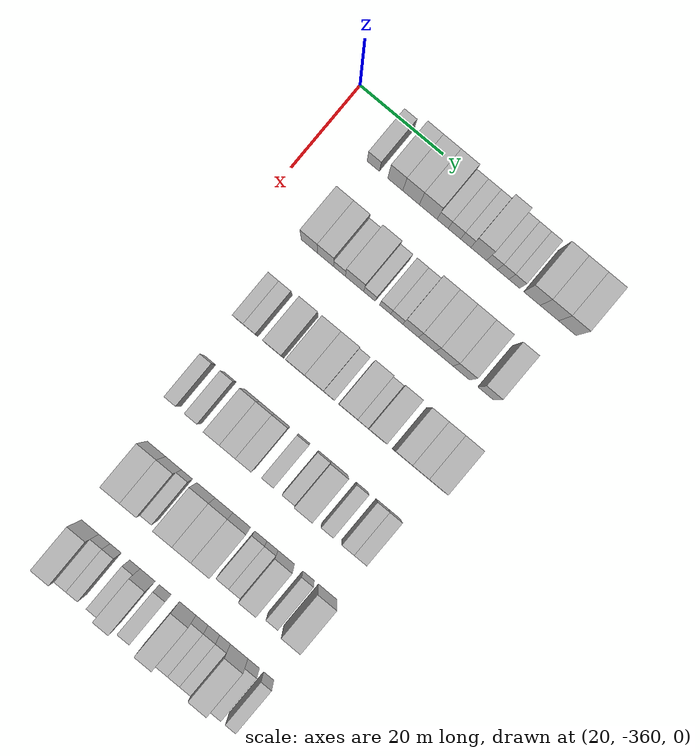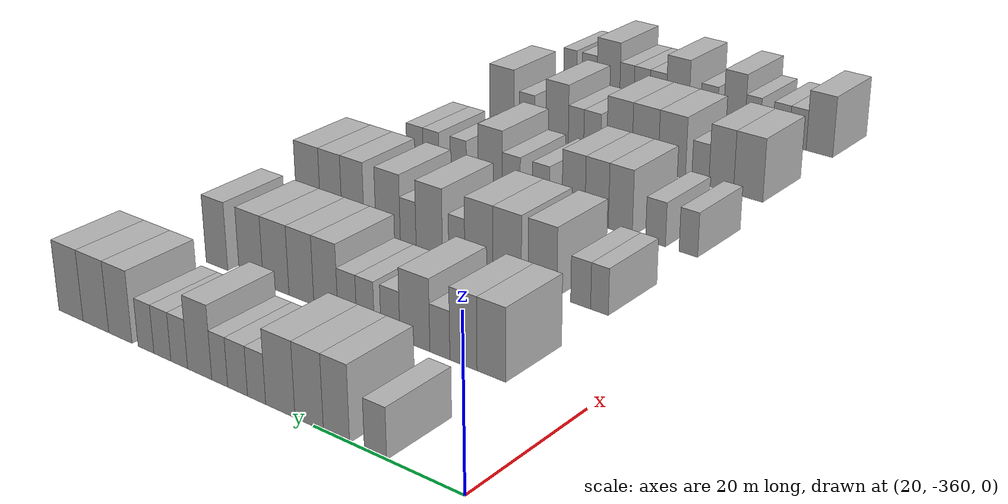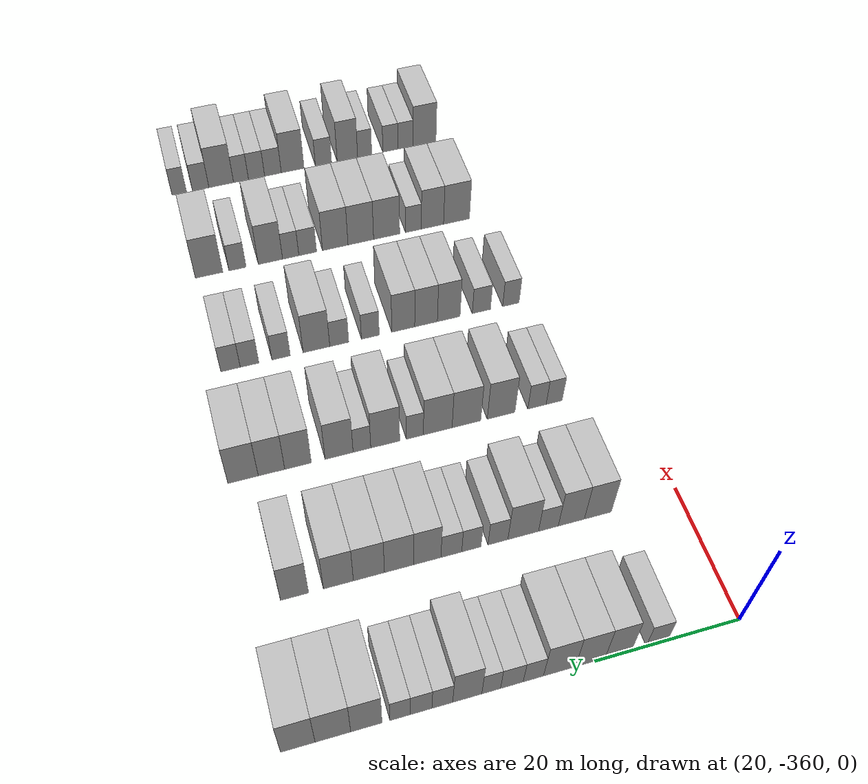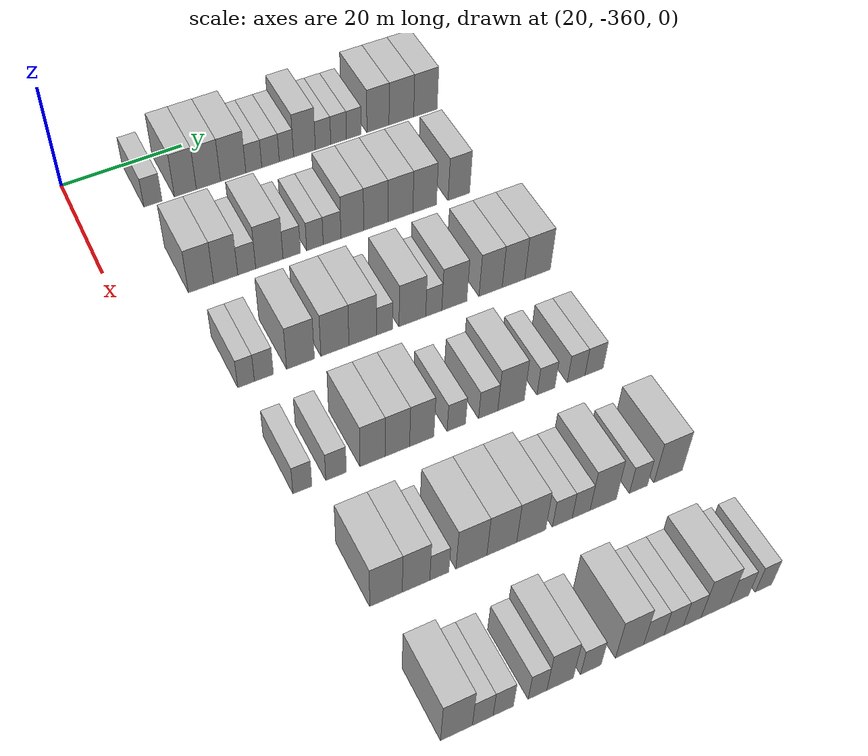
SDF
<sdf version="1.6">
 <world name="default">
  <model name="building_1">
   <static>1</static>
   <pose>25.0000 -348.5133 0 0.000000 0.000000 0.000000</pose>
   <link name="link">
    <pose>0 0 3.00 0 0 0</pose>
    <collision name="collision"><geometry><box><size>10.0000 2.9734 6.0000</size></box></geometry></collision>
    <visual name="visual">
     <cast_shadows>0</cast_shadows>
     <geometry><box><size>10.0000 2.9734 6.0000</size></box></geometry>
     <material>
      <script>
       <uri>model://HANNAS_wall/materials/scripts</uri>
       <uri>model://HANNAS_wall/materials/textures</uri>
       <name>vrc/HANNAS_wall</name>
      </script>
     </material>
    </visual>
   </link>
  </model>
  <model name="building_2">
   <static>1</static>
   <pose>25.0000 -343.2179 0 0.000000 0.000000 0.000000</pose>
   <link name="link">
    <pose>0 0 4.50 0 0 0</pose>
    <collision name="collision"><geometry><box><size>10.0000 3.6172 9.0000</size></box></geometry></collision>
    <visual name="visual">
     <cast_shadows>0</cast_shadows>
     <geometry><box><size>10.0000 3.6172 9.0000</size></box></geometry>
     <material>
      <script>
       <uri>model://HANNAS_wall/materials/scripts</uri>
       <uri>model://HANNAS_wall/materials/textures</uri>
       <name>vrc/HANNAS_wall</name>
      </script>
     </material>
    </visual>
   </link>
  </model>
  <model name="building_3">
   <static>1</static>
   <pose>25.0000 -339.4015 0 0.000000 0.000000 0.000000</pose>
   <link name="link">
    <pose>0 0 4.50 0 0 0</pose>
    <collision name="collision"><geometry><box><size>10.0000 4.0156 9.0000</size></box></geometry></collision>
    <visual name="visual">
     <cast_shadows>0</cast_shadows>
     <geometry><box><size>10.0000 4.0156 9.0000</size></box></geometry>
     <material>
      <script>
       <uri>model://HANNAS_wall/materials/scripts</uri>
       <uri>model://HANNAS_wall/materials/textures</uri>
       <name>vrc/HANNAS_wall</name>
      </script>
     </material>
    </visual>
   </link>
  </model>
  <model name="building_4">
   <static>1</static>
   <pose>25.0000 -335.2594 0 0.000000 0.000000 0.000000</pose>
   <link name="link">
    <pose>0 0 4.50 0 0 0</pose>
    <collision name="collision"><geometry><box><size>10.0000 4.2686 9.0000</size></box></geometry></collision>
    <visual name="visual">
     <cast_shadows>0</cast_shadows>
     <geometry><box><size>10.0000 4.2686 9.0000</size></box></geometry>
     <material>
      <script>
       <uri>model://HANNAS_wall/materials/scripts</uri>
       <uri>model://HANNAS_wall/materials/textures</uri>
       <name>vrc/HANNAS_wall</name>
      </script>
     </material>
    </visual>
   </link>
  </model>
  <model name="building_5">
   <static>1</static>
   <pose>25.0000 -331.7794 0 0.000000 0.000000 0.000000</pose>
   <link name="link">
    <pose>0 0 3.00 0 0 0</pose>
    <collision name="collision"><geometry><box><size>10.0000 2.6914 6.0000</size></box></geometry></collision>
    <visual name="visual">
     <cast_shadows>0</cast_shadows>
     <geometry><box><size>10.0000 2.6914 6.0000</size></box></geometry>
     <material>
      <script>
       <uri>model://HANNAS_wall/materials/scripts</uri>
       <uri>model://HANNAS_wall/materials/textures</uri>
       <name>vrc/HANNAS_wall</name>
      </script>
     </material>
    </visual>
   </link>
  </model>
  <model name="building_6">
   <static>1</static>
   <pose>25.0000 -328.9396 0 0.000000 0.000000 0.000000</pose>
   <link name="link">
    <pose>0 0 3.00 0 0 0</pose>
    <collision name="collision"><geometry><box><size>10.0000 2.9883 6.0000</size></box></geometry></collision>
    <visual name="visual">
     <cast_shadows>0</cast_shadows>
     <geometry><box><size>10.0000 2.9883 6.0000</size></box></geometry>
     <material>
      <script>
       <uri>model://HANNAS_wall/materials/scripts</uri>
       <uri>model://HANNAS_wall/materials/textures</uri>
       <name>vrc/HANNAS_wall</name>
      </script>
     </material>
    </visual>
   </link>
  </model>
  <model name="building_7">
   <static>1</static>
   <pose>25.0000 -326.2206 0 0.000000 0.000000 0.000000</pose>
   <link name="link">
    <pose>0 0 3.00 0 0 0</pose>
    <collision name="collision"><geometry><box><size>10.0000 2.4496 6.0000</size></box></geometry></collision>
    <visual name="visual">
     <cast_shadows>0</cast_shadows>
     <geometry><box><size>10.0000 2.4496 6.0000</size></box></geometry>
     <material>
      <script>
       <uri>model://HANNAS_wall/materials/scripts</uri>
       <uri>model://HANNAS_wall/materials/textures</uri>
       <name>vrc/HANNAS_wall</name>
      </script>
     </material>
    </visual>
   </link>
  </model>
  <model name="building_8">
   <static>1</static>
   <pose>25.0000 -323.1058 0 0.000000 0.000000 0.000000</pose>
   <link name="link">
    <pose>0 0 4.50 0 0 0</pose>
    <collision name="collision"><geometry><box><size>10.0000 3.7800 9.0000</size></box></geometry></collision>
    <visual name="visual">
     <cast_shadows>0</cast_shadows>
     <geometry><box><size>10.0000 3.7800 9.0000</size></box></geometry>
     <material>
      <script>
       <uri>model://HANNAS_wall/materials/scripts</uri>
       <uri>model://HANNAS_wall/materials/textures</uri>
       <name>vrc/HANNAS_wall</name>
      </script>
     </material>
    </visual>
   </link>
  </model>
  <model name="building_9">
   <static>1</static>
   <pose>25.0000 -319.8751 0 0.000000 0.000000 0.000000</pose>
   <link name="link">
    <pose>0 0 3.00 0 0 0</pose>
    <collision name="collision"><geometry><box><size>10.0000 2.6815 6.0000</size></box></geometry></collision>
    <visual name="visual">
     <cast_shadows>0</cast_shadows>
     <geometry><box><size>10.0000 2.6815 6.0000</size></box></geometry>
     <material>
      <script>
       <uri>model://HANNAS_wall/materials/scripts</uri>
       <uri>model://HANNAS_wall/materials/textures</uri>
       <name>vrc/HANNAS_wall</name>
      </script>
     </material>
    </visual>
   </link>
  </model>
  <model name="building_10">
   <static>1</static>
   <pose>25.0000 -317.1587 0 0.000000 0.000000 0.000000</pose>
   <link name="link">
    <pose>0 0 3.00 0 0 0</pose>
    <collision name="collision"><geometry><box><size>10.0000 2.7513 6.0000</size></box></geometry></collision>
    <visual name="visual">
     <cast_shadows>0</cast_shadows>
     <geometry><box><size>10.0000 2.7513 6.0000</size></box></geometry>
     <material>
      <script>
       <uri>model://HANNAS_wall/materials/scripts</uri>
       <uri>model://HANNAS_wall/materials/textures</uri>
       <name>vrc/HANNAS_wall</name>
      </script>
     </material>
    </visual>
   </link>
  </model>
  <model name="building_11">
   <static>1</static>
   <pose>25.0000 -314.4762 0 0.000000 0.000000 0.000000</pose>
   <link name="link">
    <pose>0 0 3.00 0 0 0</pose>
    <collision name="collision"><geometry><box><size>10.0000 2.6137 6.0000</size></box></geometry></collision>
    <visual name="visual">
     <cast_shadows>0</cast_shadows>
     <geometry><box><size>10.0000 2.6137 6.0000</size></box></geometry>
     <material>
      <script>
       <uri>model://HANNAS_wall/materials/scripts</uri>
       <uri>model://HANNAS_wall/materials/textures</uri>
       <name>vrc/HANNAS_wall</name>
      </script>
     </material>
    </visual>
   </link>
  </model>
  <model name="building_12">
   <static>1</static>
   <pose>25.0000 -310.1985 0 0.000000 0.000000 0.000000</pose>
   <link name="link">
    <pose>0 0 4.50 0 0 0</pose>
    <collision name="collision"><geometry><box><size>10.0000 3.9417 9.0000</size></box></geometry></collision>
    <visual name="visual">
     <cast_shadows>0</cast_shadows>
     <geometry><box><size>10.0000 3.9417 9.0000</size></box></geometry>
     <material>
      <script>
       <uri>model://HANNAS_wall/materials/scripts</uri>
       <uri>model://HANNAS_wall/materials/textures</uri>
       <name>vrc/HANNAS_wall</name>
      </script>
     </material>
    </visual>
   </link>
  </model>
  <model name="building_13">
   <static>1</static>
   <pose>25.0000 -306.0023 0 0.000000 0.000000 0.000000</pose>
   <link name="link">
    <pose>0 0 4.50 0 0 0</pose>
    <collision name="collision"><geometry><box><size>10.0000 4.4508 9.0000</size></box></geometry></collision>
    <visual name="visual">
     <cast_shadows>0</cast_shadows>
     <geometry><box><size>10.0000 4.4508 9.0000</size></box></geometry>
     <material>
      <script>
       <uri>model://HANNAS_wall/materials/scripts</uri>
       <uri>model://HANNAS_wall/materials/textures</uri>
       <name>vrc/HANNAS_wall</name>
      </script>
     </material>
    </visual>
   </link>
  </model>
  <model name="building_14">
   <static>1</static>
   <pose>25.0000 -301.6428 0 0.000000 0.000000 0.000000</pose>
   <link name="link">
    <pose>0 0 4.50 0 0 0</pose>
    <collision name="collision"><geometry><box><size>10.0000 4.2681 9.0000</size></box></geometry></collision>
    <visual name="visual">
     <cast_shadows>0</cast_shadows>
     <geometry><box><size>10.0000 4.2681 9.0000</size></box></geometry>
     <material>
      <script>
       <uri>model://HANNAS_wall/materials/scripts</uri>
       <uri>model://HANNAS_wall/materials/textures</uri>
       <name>vrc/HANNAS_wall</name>
      </script>
     </material>
    </visual>
   </link>
  </model>
  <model name="building_184">
   <static>1</static>
   <pose>44.0000 -348.0257 0 0.000000 0.000000 0.000000</pose>
   <link name="link">
    <pose>0 0 4.50 0 0 0</pose>
    <collision name="collision"><geometry><box><size>10.0000 3.9487 9.0000</size></box></geometry></collision>
    <visual name="visual">
     <cast_shadows>0</cast_shadows>
     <geometry><box><size>10.0000 3.9487 9.0000</size></box></geometry>
     <material>
      <script>
       <uri>model://HANNAS_wall/materials/scripts</uri>
       <uri>model://HANNAS_wall/materials/textures</uri>
       <name>vrc/HANNAS_wall</name>
      </script>
     </material>
    </visual>
   </link>
  </model>
  <model name="building_185">
   <static>1</static>
   <pose>44.0000 -344.1506 0 0.000000 0.000000 0.000000</pose>
   <link name="link">
    <pose>0 0 4.50 0 0 0</pose>
    <collision name="collision"><geometry><box><size>10.0000 3.8015 9.0000</size></box></geometry></collision>
    <visual name="visual">
     <cast_shadows>0</cast_shadows>
     <geometry><box><size>10.0000 3.8015 9.0000</size></box></geometry>
     <material>
      <script>
       <uri>model://HANNAS_wall/materials/scripts</uri>
       <uri>model://HANNAS_wall/materials/textures</uri>
       <name>vrc/HANNAS_wall</name>
      </script>
     </material>
    </visual>
   </link>
  </model>
  <model name="building_186">
   <static>1</static>
   <pose>44.0000 -340.8185 0 0.000000 0.000000 0.000000</pose>
   <link name="link">
    <pose>0 0 3.00 0 0 0</pose>
    <collision name="collision"><geometry><box><size>10.0000 2.8627 6.0000</size></box></geometry></collision>
    <visual name="visual">
     <cast_shadows>0</cast_shadows>
     <geometry><box><size>10.0000 2.8627 6.0000</size></box></geometry>
     <material>
      <script>
       <uri>model://HANNAS_wall/materials/scripts</uri>
       <uri>model://HANNAS_wall/materials/textures</uri>
       <name>vrc/HANNAS_wall</name>
      </script>
     </material>
    </visual>
   </link>
  </model>
  <model name="building_187">
   <static>1</static>
   <pose>44.0000 -337.1940 0 0.000000 0.000000 0.000000</pose>
   <link name="link">
    <pose>0 0 4.50 0 0 0</pose>
    <collision name="collision"><geometry><box><size>10.0000 4.3863 9.0000</size></box></geometry></collision>
    <visual name="visual">
     <cast_shadows>0</cast_shadows>
     <geometry><box><size>10.0000 4.3863 9.0000</size></box></geometry>
     <material>
      <script>
       <uri>model://HANNAS_wall/materials/scripts</uri>
       <uri>model://HANNAS_wall/materials/textures</uri>
       <name>vrc/HANNAS_wall</name>
      </script>
     </material>
    </visual>
   </link>
  </model>
  <model name="building_188">
   <static>1</static>
   <pose>44.0000 -333.5856 0 0.000000 0.000000 0.000000</pose>
   <link name="link">
    <pose>0 0 3.00 0 0 0</pose>
    <collision name="collision"><geometry><box><size>10.0000 2.8305 6.0000</size></box></geometry></collision>
    <visual name="visual">
     <cast_shadows>0</cast_shadows>
     <geometry><box><size>10.0000 2.8305 6.0000</size></box></geometry>
     <material>
      <script>
       <uri>model://HANNAS_wall/materials/scripts</uri>
       <uri>model://HANNAS_wall/materials/textures</uri>
       <name>vrc/HANNAS_wall</name>
      </script>
     </material>
    </visual>
   </link>
  </model>
  <model name="building_189">
   <static>1</static>
   <pose>44.0000 -329.8129 0 0.000000 0.000000 0.000000</pose>
   <link name="link">
    <pose>0 0 3.00 0 0 0</pose>
    <collision name="collision"><geometry><box><size>10.0000 2.7150 6.0000</size></box></geometry></collision>
    <visual name="visual">
     <cast_shadows>0</cast_shadows>
     <geometry><box><size>10.0000 2.7150 6.0000</size></box></geometry>
     <material>
      <script>
       <uri>model://HANNAS_wall/materials/scripts</uri>
       <uri>model://HANNAS_wall/materials/textures</uri>
       <name>vrc/HANNAS_wall</name>
      </script>
     </material>
    </visual>
   </link>
  </model>
  <model name="building_190">
   <static>1</static>
   <pose>44.0000 -326.9961 0 0.000000 0.000000 0.000000</pose>
   <link name="link">
    <pose>0 0 3.00 0 0 0</pose>
    <collision name="collision"><geometry><box><size>10.0000 2.9185 6.0000</size></box></geometry></collision>
    <visual name="visual">
     <cast_shadows>0</cast_shadows>
     <geometry><box><size>10.0000 2.9185 6.0000</size></box></geometry>
     <material>
      <script>
       <uri>model://HANNAS_wall/materials/scripts</uri>
       <uri>model://HANNAS_wall/materials/textures</uri>
       <name>vrc/HANNAS_wall</name>
      </script>
     </material>
    </visual>
   </link>
  </model>
  <model name="building_191">
   <static>1</static>
   <pose>44.0000 -323.6446 0 0.000000 0.000000 0.000000</pose>
   <link name="link">
    <pose>0 0 4.50 0 0 0</pose>
    <collision name="collision"><geometry><box><size>10.0000 3.7847 9.0000</size></box></geometry></collision>
    <visual name="visual">
     <cast_shadows>0</cast_shadows>
     <geometry><box><size>10.0000 3.7847 9.0000</size></box></geometry>
     <material>
      <script>
       <uri>model://HANNAS_wall/materials/scripts</uri>
       <uri>model://HANNAS_wall/materials/textures</uri>
       <name>vrc/HANNAS_wall</name>
      </script>
     </material>
    </visual>
   </link>
  </model>
  <model name="building_192">
   <static>1</static>
   <pose>44.0000 -319.7346 0 0.000000 0.000000 0.000000</pose>
   <link name="link">
    <pose>0 0 4.50 0 0 0</pose>
    <collision name="collision"><geometry><box><size>10.0000 4.0351 9.0000</size></box></geometry></collision>
    <visual name="visual">
     <cast_shadows>0</cast_shadows>
     <geometry><box><size>10.0000 4.0351 9.0000</size></box></geometry>
     <material>
      <script>
       <uri>model://HANNAS_wall/materials/scripts</uri>
       <uri>model://HANNAS_wall/materials/textures</uri>
       <name>vrc/HANNAS_wall</name>
      </script>
     </material>
    </visual>
   </link>
  </model>
  <model name="building_193">
   <static>1</static>
   <pose>44.0000 -315.5925 0 0.000000 0.000000 0.000000</pose>
   <link name="link">
    <pose>0 0 4.50 0 0 0</pose>
    <collision name="collision"><geometry><box><size>10.0000 4.2491 9.0000</size></box></geometry></collision>
    <visual name="visual">
     <cast_shadows>0</cast_shadows>
     <geometry><box><size>10.0000 4.2491 9.0000</size></box></geometry>
     <material>
      <script>
       <uri>model://HANNAS_wall/materials/scripts</uri>
       <uri>model://HANNAS_wall/materials/textures</uri>
       <name>vrc/HANNAS_wall</name>
      </script>
     </material>
    </visual>
   </link>
  </model>
  <model name="building_194">
   <static>1</static>
   <pose>44.0000 -311.4368 0 0.000000 0.000000 0.000000</pose>
   <link name="link">
    <pose>0 0 4.50 0 0 0</pose>
    <collision name="collision"><geometry><box><size>10.0000 4.0625 9.0000</size></box></geometry></collision>
    <visual name="visual">
     <cast_shadows>0</cast_shadows>
     <geometry><box><size>10.0000 4.0625 9.0000</size></box></geometry>
     <material>
      <script>
       <uri>model://HANNAS_wall/materials/scripts</uri>
       <uri>model://HANNAS_wall/materials/textures</uri>
       <name>vrc/HANNAS_wall</name>
      </script>
     </material>
    </visual>
   </link>
  </model>
  <model name="building_195">
   <static>1</static>
   <pose>44.0000 -305.5252 0 0.000000 0.000000 0.000000</pose>
   <link name="link">
    <pose>0 0 4.50 0 0 0</pose>
    <collision name="collision"><geometry><box><size>10.0000 3.7606 9.0000</size></box></geometry></collision>
    <visual name="visual">
     <cast_shadows>0</cast_shadows>
     <geometry><box><size>10.0000 3.7606 9.0000</size></box></geometry>
     <material>
      <script>
       <uri>model://HANNAS_wall/materials/scripts</uri>
       <uri>model://HANNAS_wall/materials/textures</uri>
       <name>vrc/HANNAS_wall</name>
      </script>
     </material>
    </visual>
   </link>
  </model>
  <model name="building_345">
   <static>1</static>
   <pose>63.0000 -348.7533 0 0.000000 0.000000 0.000000</pose>
   <link name="link">
    <pose>0 0 3.00 0 0 0</pose>
    <collision name="collision"><geometry><box><size>10.0000 2.4933 6.0000</size></box></geometry></collision>
    <visual name="visual">
     <cast_shadows>0</cast_shadows>
     <geometry><box><size>10.0000 2.4933 6.0000</size></box></geometry>
     <material>
      <script>
       <uri>model://HANNAS_wall/materials/scripts</uri>
       <uri>model://HANNAS_wall/materials/textures</uri>
       <name>vrc/HANNAS_wall</name>
      </script>
     </material>
    </visual>
   </link>
  </model>
  <model name="building_346">
   <static>1</static>
   <pose>63.0000 -346.0830 0 0.000000 0.000000 0.000000</pose>
   <link name="link">
    <pose>0 0 3.00 0 0 0</pose>
    <collision name="collision"><geometry><box><size>10.0000 2.8473 6.0000</size></box></geometry></collision>
    <visual name="visual">
     <cast_shadows>0</cast_shadows>
     <geometry><box><size>10.0000 2.8473 6.0000</size></box></geometry>
     <material>
      <script>
       <uri>model://HANNAS_wall/materials/scripts</uri>
       <uri>model://HANNAS_wall/materials/textures</uri>
       <name>vrc/HANNAS_wall</name>
      </script>
     </material>
    </visual>
   </link>
  </model>
  <model name="building_347">
   <static>1</static>
   <pose>63.0000 -340.5374 0 0.000000 0.000000 0.000000</pose>
   <link name="link">
    <pose>0 0 4.50 0 0 0</pose>
    <collision name="collision"><geometry><box><size>10.0000 4.2439 9.0000</size></box></geometry></collision>
    <visual name="visual">
     <cast_shadows>0</cast_shadows>
     <geometry><box><size>10.0000 4.2439 9.0000</size></box></geometry>
     <material>
      <script>
       <uri>model://HANNAS_wall/materials/scripts</uri>
       <uri>model://HANNAS_wall/materials/textures</uri>
       <name>vrc/HANNAS_wall</name>
      </script>
     </material>
    </visual>
   </link>
  </model>
  <model name="building_348">
   <static>1</static>
   <pose>63.0000 -335.2444 0 0.000000 0.000000 0.000000</pose>
   <link name="link">
    <pose>0 0 4.50 0 0 0</pose>
    <collision name="collision"><geometry><box><size>10.0000 4.3421 9.0000</size></box></geometry></collision>
    <visual name="visual">
     <cast_shadows>0</cast_shadows>
     <geometry><box><size>10.0000 4.3421 9.0000</size></box></geometry>
     <material>
      <script>
       <uri>model://HANNAS_wall/materials/scripts</uri>
       <uri>model://HANNAS_wall/materials/textures</uri>
       <name>vrc/HANNAS_wall</name>
      </script>
     </material>
    </visual>
   </link>
  </model>
  <model name="building_349">
   <static>1</static>
   <pose>63.0000 -330.9097 0 0.000000 0.000000 0.000000</pose>
   <link name="link">
    <pose>0 0 4.50 0 0 0</pose>
    <collision name="collision"><geometry><box><size>10.0000 4.3273 9.0000</size></box></geometry></collision>
    <visual name="visual">
     <cast_shadows>0</cast_shadows>
     <geometry><box><size>10.0000 4.3273 9.0000</size></box></geometry>
     <material>
      <script>
       <uri>model://HANNAS_wall/materials/scripts</uri>
       <uri>model://HANNAS_wall/materials/textures</uri>
       <name>vrc/HANNAS_wall</name>
      </script>
     </material>
    </visual>
   </link>
  </model>
  <model name="building_350">
   <static>1</static>
   <pose>63.0000 -327.4767 0 0.000000 0.000000 0.000000</pose>
   <link name="link">
    <pose>0 0 3.00 0 0 0</pose>
    <collision name="collision"><geometry><box><size>10.0000 2.5388 6.0000</size></box></geometry></collision>
    <visual name="visual">
     <cast_shadows>0</cast_shadows>
     <geometry><box><size>10.0000 2.5388 6.0000</size></box></geometry>
     <material>
      <script>
       <uri>model://HANNAS_wall/materials/scripts</uri>
       <uri>model://HANNAS_wall/materials/textures</uri>
       <name>vrc/HANNAS_wall</name>
      </script>
     </material>
    </visual>
   </link>
  </model>
  <model name="building_351">
   <static>1</static>
   <pose>63.0000 -323.0699 0 0.000000 0.000000 0.000000</pose>
   <link name="link">
    <pose>0 0 4.50 0 0 0</pose>
    <collision name="collision"><geometry><box><size>10.0000 4.2748 9.0000</size></box></geometry></collision>
    <visual name="visual">
     <cast_shadows>0</cast_shadows>
     <geometry><box><size>10.0000 4.2748 9.0000</size></box></geometry>
     <material>
      <script>
       <uri>model://HANNAS_wall/materials/scripts</uri>
       <uri>model://HANNAS_wall/materials/textures</uri>
       <name>vrc/HANNAS_wall</name>
      </script>
     </material>
    </visual>
   </link>
  </model>
  <model name="building_352">
   <static>1</static>
   <pose>63.0000 -319.6327 0 0.000000 0.000000 0.000000</pose>
   <link name="link">
    <pose>0 0 3.00 0 0 0</pose>
    <collision name="collision"><geometry><box><size>10.0000 2.5997 6.0000</size></box></geometry></collision>
    <visual name="visual">
     <cast_shadows>0</cast_shadows>
     <geometry><box><size>10.0000 2.5997 6.0000</size></box></geometry>
     <material>
      <script>
       <uri>model://HANNAS_wall/materials/scripts</uri>
       <uri>model://HANNAS_wall/materials/textures</uri>
       <name>vrc/HANNAS_wall</name>
      </script>
     </material>
    </visual>
   </link>
  </model>
  <model name="building_353">
   <static>1</static>
   <pose>63.0000 -316.2859 0 0.000000 0.000000 0.000000</pose>
   <link name="link">
    <pose>0 0 4.50 0 0 0</pose>
    <collision name="collision"><geometry><box><size>10.0000 4.0939 9.0000</size></box></geometry></collision>
    <visual name="visual">
     <cast_shadows>0</cast_shadows>
     <geometry><box><size>10.0000 4.0939 9.0000</size></box></geometry>
     <material>
      <script>
       <uri>model://HANNAS_wall/materials/scripts</uri>
       <uri>model://HANNAS_wall/materials/textures</uri>
       <name>vrc/HANNAS_wall</name>
      </script>
     </material>
    </visual>
   </link>
  </model>
  <model name="building_354">
   <static>1</static>
   <pose>63.0000 -310.3203 0 0.000000 0.000000 0.000000</pose>
   <link name="link">
    <pose>0 0 4.50 0 0 0</pose>
    <collision name="collision"><geometry><box><size>10.0000 3.8371 9.0000</size></box></geometry></collision>
    <visual name="visual">
     <cast_shadows>0</cast_shadows>
     <geometry><box><size>10.0000 3.8371 9.0000</size></box></geometry>
     <material>
      <script>
       <uri>model://HANNAS_wall/materials/scripts</uri>
       <uri>model://HANNAS_wall/materials/textures</uri>
       <name>vrc/HANNAS_wall</name>
      </script>
     </material>
    </visual>
   </link>
  </model>
  <model name="building_355">
   <static>1</static>
   <pose>63.0000 -306.5069 0 0.000000 0.000000 0.000000</pose>
   <link name="link">
    <pose>0 0 4.50 0 0 0</pose>
    <collision name="collision"><geometry><box><size>10.0000 3.7898 9.0000</size></box></geometry></collision>
    <visual name="visual">
     <cast_shadows>0</cast_shadows>
     <geometry><box><size>10.0000 3.7898 9.0000</size></box></geometry>
     <material>
      <script>
       <uri>model://HANNAS_wall/materials/scripts</uri>
       <uri>model://HANNAS_wall/materials/textures</uri>
       <name>vrc/HANNAS_wall</name>
      </script>
     </material>
    </visual>
   </link>
  </model>
  <model name="building_356">
   <static>1</static>
   <pose>63.0000 -302.4527 0 0.000000 0.000000 0.000000</pose>
   <link name="link">
    <pose>0 0 4.50 0 0 0</pose>
    <collision name="collision"><geometry><box><size>10.0000 4.3184 9.0000</size></box></geometry></collision>
    <visual name="visual">
     <cast_shadows>0</cast_shadows>
     <geometry><box><size>10.0000 4.3184 9.0000</size></box></geometry>
     <material>
      <script>
       <uri>model://HANNAS_wall/materials/scripts</uri>
       <uri>model://HANNAS_wall/materials/textures</uri>
       <name>vrc/HANNAS_wall</name>
      </script>
     </material>
    </visual>
   </link>
  </model>
  <model name="building_512">
   <static>1</static>
   <pose>82.0000 -348.6466 0 0.000000 0.000000 0.000000</pose>
   <link name="link">
    <pose>0 0 3.00 0 0 0</pose>
    <collision name="collision"><geometry><box><size>10.0000 2.7068 6.0000</size></box></geometry></collision>
    <visual name="visual">
     <cast_shadows>0</cast_shadows>
     <geometry><box><size>10.0000 2.7068 6.0000</size></box></geometry>
     <material>
      <script>
       <uri>model://HANNAS_wall/materials/scripts</uri>
       <uri>model://HANNAS_wall/materials/textures</uri>
       <name>vrc/HANNAS_wall</name>
      </script>
     </material>
    </visual>
   </link>
  </model>
  <model name="building_513">
   <static>1</static>
   <pose>82.0000 -343.8101 0 0.000000 0.000000 0.000000</pose>
   <link name="link">
    <pose>0 0 3.00 0 0 0</pose>
    <collision name="collision"><geometry><box><size>10.0000 2.9663 6.0000</size></box></geometry></collision>
    <visual name="visual">
     <cast_shadows>0</cast_shadows>
     <geometry><box><size>10.0000 2.9663 6.0000</size></box></geometry>
     <material>
      <script>
       <uri>model://HANNAS_wall/materials/scripts</uri>
       <uri>model://HANNAS_wall/materials/textures</uri>
       <name>vrc/HANNAS_wall</name>
      </script>
     </material>
    </visual>
   </link>
  </model>
  <model name="building_514">
   <static>1</static>
   <pose>82.0000 -338.4908 0 0.000000 0.000000 0.000000</pose>
   <link name="link">
    <pose>0 0 4.50 0 0 0</pose>
    <collision name="collision"><geometry><box><size>10.0000 3.6723 9.0000</size></box></geometry></collision>
    <visual name="visual">
     <cast_shadows>0</cast_shadows>
     <geometry><box><size>10.0000 3.6723 9.0000</size></box></geometry>
     <material>
      <script>
       <uri>model://HANNAS_wall/materials/scripts</uri>
       <uri>model://HANNAS_wall/materials/textures</uri>
       <name>vrc/HANNAS_wall</name>
      </script>
     </material>
    </visual>
   </link>
  </model>
  <model name="building_515">
   <static>1</static>
   <pose>82.0000 -334.8327 0 0.000000 0.000000 0.000000</pose>
   <link name="link">
    <pose>0 0 4.50 0 0 0</pose>
    <collision name="collision"><geometry><box><size>10.0000 3.6438 9.0000</size></box></geometry></collision>
    <visual name="visual">
     <cast_shadows>0</cast_shadows>
     <geometry><box><size>10.0000 3.6438 9.0000</size></box></geometry>
     <material>
      <script>
       <uri>model://HANNAS_wall/materials/scripts</uri>
       <uri>model://HANNAS_wall/materials/textures</uri>
       <name>vrc/HANNAS_wall</name>
      </script>
     </material>
    </visual>
   </link>
  </model>
  <model name="building_516">
   <static>1</static>
   <pose>82.0000 -331.1827 0 0.000000 0.000000 0.000000</pose>
   <link name="link">
    <pose>0 0 4.50 0 0 0</pose>
    <collision name="collision"><geometry><box><size>10.0000 3.6563 9.0000</size></box></geometry></collision>
    <visual name="visual">
     <cast_shadows>0</cast_shadows>
     <geometry><box><size>10.0000 3.6563 9.0000</size></box></geometry>
     <material>
      <script>
       <uri>model://HANNAS_wall/materials/scripts</uri>
       <uri>model://HANNAS_wall/materials/textures</uri>
       <name>vrc/HANNAS_wall</name>
      </script>
     </material>
    </visual>
   </link>
  </model>
  <model name="building_517">
   <static>1</static>
   <pose>82.0000 -325.9467 0 0.000000 0.000000 0.000000</pose>
   <link name="link">
    <pose>0 0 3.00 0 0 0</pose>
    <collision name="collision"><geometry><box><size>10.0000 2.8157 6.0000</size></box></geometry></collision>
    <visual name="visual">
     <cast_shadows>0</cast_shadows>
     <geometry><box><size>10.0000 2.8157 6.0000</size></box></geometry>
     <material>
      <script>
       <uri>model://HANNAS_wall/materials/scripts</uri>
       <uri>model://HANNAS_wall/materials/textures</uri>
       <name>vrc/HANNAS_wall</name>
      </script>
     </material>
    </visual>
   </link>
  </model>
  <model name="building_518">
   <static>1</static>
   <pose>82.0000 -321.0589 0 0.000000 0.000000 0.000000</pose>
   <link name="link">
    <pose>0 0 3.00 0 0 0</pose>
    <collision name="collision"><geometry><box><size>10.0000 2.9599 6.0000</size></box></geometry></collision>
    <visual name="visual">
     <cast_shadows>0</cast_shadows>
     <geometry><box><size>10.0000 2.9599 6.0000</size></box></geometry>
     <material>
      <script>
       <uri>model://HANNAS_wall/materials/scripts</uri>
       <uri>model://HANNAS_wall/materials/textures</uri>
       <name>vrc/HANNAS_wall</name>
      </script>
     </material>
    </visual>
   </link>
  </model>
  <model name="building_519">
   <static>1</static>
   <pose>82.0000 -317.5068 0 0.000000 0.000000 0.000000</pose>
   <link name="link">
    <pose>0 0 4.50 0 0 0</pose>
    <collision name="collision"><geometry><box><size>10.0000 4.1443 9.0000</size></box></geometry></collision>
    <visual name="visual">
     <cast_shadows>0</cast_shadows>
     <geometry><box><size>10.0000 4.1443 9.0000</size></box></geometry>
     <material>
      <script>
       <uri>model://HANNAS_wall/materials/scripts</uri>
       <uri>model://HANNAS_wall/materials/textures</uri>
       <name>vrc/HANNAS_wall</name>
      </script>
     </material>
    </visual>
   </link>
  </model>
  <model name="building_520">
   <static>1</static>
   <pose>82.0000 -312.0221 0 0.000000 0.000000 0.000000</pose>
   <link name="link">
    <pose>0 0 3.00 0 0 0</pose>
    <collision name="collision"><geometry><box><size>10.0000 2.8252 6.0000</size></box></geometry></collision>
    <visual name="visual">
     <cast_shadows>0</cast_shadows>
     <geometry><box><size>10.0000 2.8252 6.0000</size></box></geometry>
     <material>
      <script>
       <uri>model://HANNAS_wall/materials/scripts</uri>
       <uri>model://HANNAS_wall/materials/textures</uri>
       <name>vrc/HANNAS_wall</name>
      </script>
     </material>
    </visual>
   </link>
  </model>
  <model name="building_521">
   <static>1</static>
   <pose>82.0000 -307.1893 0 0.000000 0.000000 0.000000</pose>
   <link name="link">
    <pose>0 0 3.00 0 0 0</pose>
    <collision name="collision"><geometry><box><size>10.0000 2.8404 6.0000</size></box></geometry></collision>
    <visual name="visual">
     <cast_shadows>0</cast_shadows>
     <geometry><box><size>10.0000 2.8404 6.0000</size></box></geometry>
     <material>
      <script>
       <uri>model://HANNAS_wall/materials/scripts</uri>
       <uri>model://HANNAS_wall/materials/textures</uri>
       <name>vrc/HANNAS_wall</name>
      </script>
     </material>
    </visual>
   </link>
  </model>
  <model name="building_522">
   <static>1</static>
   <pose>82.0000 -304.2925 0 0.000000 0.000000 0.000000</pose>
   <link name="link">
    <pose>0 0 3.00 0 0 0</pose>
    <collision name="collision"><geometry><box><size>10.0000 2.9532 6.0000</size></box></geometry></collision>
    <visual name="visual">
     <cast_shadows>0</cast_shadows>
     <geometry><box><size>10.0000 2.9532 6.0000</size></box></geometry>
     <material>
      <script>
       <uri>model://HANNAS_wall/materials/scripts</uri>
       <uri>model://HANNAS_wall/materials/textures</uri>
       <name>vrc/HANNAS_wall</name>
      </script>
     </material>
    </visual>
   </link>
  </model>
  <model name="building_674">
   <static>1</static>
   <pose>101.0000 -345.7637 0 0.000000 0.000000 0.000000</pose>
   <link name="link">
    <pose>0 0 4.50 0 0 0</pose>
    <collision name="collision"><geometry><box><size>10.0000 4.4727 9.0000</size></box></geometry></collision>
    <visual name="visual">
     <cast_shadows>0</cast_shadows>
     <geometry><box><size>10.0000 4.4727 9.0000</size></box></geometry>
     <material>
      <script>
       <uri>model://HANNAS_wall/materials/scripts</uri>
       <uri>model://HANNAS_wall/materials/textures</uri>
       <name>vrc/HANNAS_wall</name>
      </script>
     </material>
    </visual>
   </link>
  </model>
  <model name="building_675">
   <static>1</static>
   <pose>101.0000 -341.6103 0 0.000000 0.000000 0.000000</pose>
   <link name="link">
    <pose>0 0 4.50 0 0 0</pose>
    <collision name="collision"><geometry><box><size>10.0000 3.8340 9.0000</size></box></geometry></collision>
    <visual name="visual">
     <cast_shadows>0</cast_shadows>
     <geometry><box><size>10.0000 3.8340 9.0000</size></box></geometry>
     <material>
      <script>
       <uri>model://HANNAS_wall/materials/scripts</uri>
       <uri>model://HANNAS_wall/materials/textures</uri>
       <name>vrc/HANNAS_wall</name>
      </script>
     </material>
    </visual>
   </link>
  </model>
  <model name="building_676">
   <static>1</static>
   <pose>101.0000 -338.3477 0 0.000000 0.000000 0.000000</pose>
   <link name="link">
    <pose>0 0 3.00 0 0 0</pose>
    <collision name="collision"><geometry><box><size>10.0000 2.6911 6.0000</size></box></geometry></collision>
    <visual name="visual">
     <cast_shadows>0</cast_shadows>
     <geometry><box><size>10.0000 2.6911 6.0000</size></box></geometry>
     <material>
      <script>
       <uri>model://HANNAS_wall/materials/scripts</uri>
       <uri>model://HANNAS_wall/materials/textures</uri>
       <name>vrc/HANNAS_wall</name>
      </script>
     </material>
    </visual>
   </link>
  </model>
  <model name="building_677">
   <static>1</static>
   <pose>101.0000 -333.7951 0 0.000000 0.000000 0.000000</pose>
   <link name="link">
    <pose>0 0 4.50 0 0 0</pose>
    <collision name="collision"><geometry><box><size>10.0000 4.4142 9.0000</size></box></geometry></collision>
    <visual name="visual">
     <cast_shadows>0</cast_shadows>
     <geometry><box><size>10.0000 4.4142 9.0000</size></box></geometry>
     <material>
      <script>
       <uri>model://HANNAS_wall/materials/scripts</uri>
       <uri>model://HANNAS_wall/materials/textures</uri>
       <name>vrc/HANNAS_wall</name>
      </script>
     </material>
    </visual>
   </link>
  </model>
  <model name="building_678">
   <static>1</static>
   <pose>101.0000 -329.4331 0 0.000000 0.000000 0.000000</pose>
   <link name="link">
    <pose>0 0 4.50 0 0 0</pose>
    <collision name="collision"><geometry><box><size>10.0000 4.3100 9.0000</size></box></geometry></collision>
    <visual name="visual">
     <cast_shadows>0</cast_shadows>
     <geometry><box><size>10.0000 4.3100 9.0000</size></box></geometry>
     <material>
      <script>
       <uri>model://HANNAS_wall/materials/scripts</uri>
       <uri>model://HANNAS_wall/materials/textures</uri>
       <name>vrc/HANNAS_wall</name>
      </script>
     </material>
    </visual>
   </link>
  </model>
  <model name="building_679">
   <static>1</static>
   <pose>101.0000 -325.1528 0 0.000000 0.000000 0.000000</pose>
   <link name="link">
    <pose>0 0 4.50 0 0 0</pose>
    <collision name="collision"><geometry><box><size>10.0000 4.2506 9.0000</size></box></geometry></collision>
    <visual name="visual">
     <cast_shadows>0</cast_shadows>
     <geometry><box><size>10.0000 4.2506 9.0000</size></box></geometry>
     <material>
      <script>
       <uri>model://HANNAS_wall/materials/scripts</uri>
       <uri>model://HANNAS_wall/materials/textures</uri>
       <name>vrc/HANNAS_wall</name>
      </script>
     </material>
    </visual>
   </link>
  </model>
  <model name="building_680">
   <static>1</static>
   <pose>101.0000 -320.5606 0 0.000000 0.000000 0.000000</pose>
   <link name="link">
    <pose>0 0 3.00 0 0 0</pose>
    <collision name="collision"><geometry><box><size>10.0000 2.9338 6.0000</size></box></geometry></collision>
    <visual name="visual">
     <cast_shadows>0</cast_shadows>
     <geometry><box><size>10.0000 2.9338 6.0000</size></box></geometry>
     <material>
      <script>
       <uri>model://HANNAS_wall/materials/scripts</uri>
       <uri>model://HANNAS_wall/materials/textures</uri>
       <name>vrc/HANNAS_wall</name>
      </script>
     </material>
    </visual>
   </link>
  </model>
  <model name="building_681">
   <static>1</static>
   <pose>101.0000 -317.7566 0 0.000000 0.000000 0.000000</pose>
   <link name="link">
    <pose>0 0 3.00 0 0 0</pose>
    <collision name="collision"><geometry><box><size>10.0000 2.6742 6.0000</size></box></geometry></collision>
    <visual name="visual">
     <cast_shadows>0</cast_shadows>
     <geometry><box><size>10.0000 2.6742 6.0000</size></box></geometry>
     <material>
      <script>
       <uri>model://HANNAS_wall/materials/scripts</uri>
       <uri>model://HANNAS_wall/materials/textures</uri>
       <name>vrc/HANNAS_wall</name>
      </script>
     </material>
    </visual>
   </link>
  </model>
  <model name="building_682">
   <static>1</static>
   <pose>101.0000 -314.4323 0 0.000000 0.000000 0.000000</pose>
   <link name="link">
    <pose>0 0 4.50 0 0 0</pose>
    <collision name="collision"><geometry><box><size>10.0000 3.9745 9.0000</size></box></geometry></collision>
    <visual name="visual">
     <cast_shadows>0</cast_shadows>
     <geometry><box><size>10.0000 3.9745 9.0000</size></box></geometry>
     <material>
      <script>
       <uri>model://HANNAS_wall/materials/scripts</uri>
       <uri>model://HANNAS_wall/materials/textures</uri>
       <name>vrc/HANNAS_wall</name>
      </script>
     </material>
    </visual>
   </link>
  </model>
  <model name="building_683">
   <static>1</static>
   <pose>101.0000 -309.0572 0 0.000000 0.000000 0.000000</pose>
   <link name="link">
    <pose>0 0 3.00 0 0 0</pose>
    <collision name="collision"><geometry><box><size>10.0000 2.7756 6.0000</size></box></geometry></collision>
    <visual name="visual">
     <cast_shadows>0</cast_shadows>
     <geometry><box><size>10.0000 2.7756 6.0000</size></box></geometry>
     <material>
      <script>
       <uri>model://HANNAS_wall/materials/scripts</uri>
       <uri>model://HANNAS_wall/materials/textures</uri>
       <name>vrc/HANNAS_wall</name>
      </script>
     </material>
    </visual>
   </link>
  </model>
  <model name="building_684">
   <static>1</static>
   <pose>101.0000 -304.4636 0 0.000000 0.000000 0.000000</pose>
   <link name="link">
    <pose>0 0 4.50 0 0 0</pose>
    <collision name="collision"><geometry><box><size>10.0000 4.4116 9.0000</size></box></geometry></collision>
    <visual name="visual">
     <cast_shadows>0</cast_shadows>
     <geometry><box><size>10.0000 4.4116 9.0000</size></box></geometry>
     <material>
      <script>
       <uri>model://HANNAS_wall/materials/scripts</uri>
       <uri>model://HANNAS_wall/materials/textures</uri>
       <name>vrc/HANNAS_wall</name>
      </script>
     </material>
    </visual>
   </link>
  </model>
  <model name="building_845">
   <static>1</static>
   <pose>120.0000 -345.9110 0 0.000000 0.000000 0.000000</pose>
   <link name="link">
    <pose>0 0 4.50 0 0 0</pose>
    <collision name="collision"><geometry><box><size>10.0000 4.1781 9.0000</size></box></geometry></collision>
    <visual name="visual">
     <cast_shadows>0</cast_shadows>
     <geometry><box><size>10.0000 4.1781 9.0000</size></box></geometry>
     <material>
      <script>
       <uri>model://HANNAS_wall/materials/scripts</uri>
       <uri>model://HANNAS_wall/materials/textures</uri>
       <name>vrc/HANNAS_wall</name>
      </script>
     </material>
    </visual>
   </link>
  </model>
  <model name="building_846">
   <static>1</static>
   <pose>120.0000 -342.4499 0 0.000000 0.000000 0.000000</pose>
   <link name="link">
    <pose>0 0 3.00 0 0 0</pose>
    <collision name="collision"><geometry><box><size>10.0000 2.7440 6.0000</size></box></geometry></collision>
    <visual name="visual">
     <cast_shadows>0</cast_shadows>
     <geometry><box><size>10.0000 2.7440 6.0000</size></box></geometry>
     <material>
      <script>
       <uri>model://HANNAS_wall/materials/scripts</uri>
       <uri>model://HANNAS_wall/materials/textures</uri>
       <name>vrc/HANNAS_wall</name>
      </script>
     </material>
    </visual>
   </link>
  </model>
  <model name="building_847">
   <static>1</static>
   <pose>120.0000 -339.7229 0 0.000000 0.000000 0.000000</pose>
   <link name="link">
    <pose>0 0 3.00 0 0 0</pose>
    <collision name="collision"><geometry><box><size>10.0000 2.7101 6.0000</size></box></geometry></collision>
    <visual name="visual">
     <cast_shadows>0</cast_shadows>
     <geometry><box><size>10.0000 2.7101 6.0000</size></box></geometry>
     <material>
      <script>
       <uri>model://HANNAS_wall/materials/scripts</uri>
       <uri>model://HANNAS_wall/materials/textures</uri>
       <name>vrc/HANNAS_wall</name>
      </script>
     </material>
    </visual>
   </link>
  </model>
  <model name="building_848">
   <static>1</static>
   <pose>120.0000 -335.1069 0 0.000000 0.000000 0.000000</pose>
   <link name="link">
    <pose>0 0 3.00 0 0 0</pose>
    <collision name="collision"><geometry><box><size>10.0000 2.5221 6.0000</size></box></geometry></collision>
    <visual name="visual">
     <cast_shadows>0</cast_shadows>
     <geometry><box><size>10.0000 2.5221 6.0000</size></box></geometry>
     <material>
      <script>
       <uri>model://HANNAS_wall/materials/scripts</uri>
       <uri>model://HANNAS_wall/materials/textures</uri>
       <name>vrc/HANNAS_wall</name>
      </script>
     </material>
    </visual>
   </link>
  </model>
  <model name="building_849">
   <static>1</static>
   <pose>120.0000 -332.0238 0 0.000000 0.000000 0.000000</pose>
   <link name="link">
    <pose>0 0 4.50 0 0 0</pose>
    <collision name="collision"><geometry><box><size>10.0000 3.6441 9.0000</size></box></geometry></collision>
    <visual name="visual">
     <cast_shadows>0</cast_shadows>
     <geometry><box><size>10.0000 3.6441 9.0000</size></box></geometry>
     <material>
      <script>
       <uri>model://HANNAS_wall/materials/scripts</uri>
       <uri>model://HANNAS_wall/materials/textures</uri>
       <name>vrc/HANNAS_wall</name>
      </script>
     </material>
    </visual>
   </link>
  </model>
  <model name="building_850">
   <static>1</static>
   <pose>120.0000 -327.7724 0 0.000000 0.000000 0.000000</pose>
   <link name="link">
    <pose>0 0 3.00 0 0 0</pose>
    <collision name="collision"><geometry><box><size>10.0000 2.8587 6.0000</size></box></geometry></collision>
    <visual name="visual">
     <cast_shadows>0</cast_shadows>
     <geometry><box><size>10.0000 2.8587 6.0000</size></box></geometry>
     <material>
      <script>
       <uri>model://HANNAS_wall/materials/scripts</uri>
       <uri>model://HANNAS_wall/materials/textures</uri>
       <name>vrc/HANNAS_wall</name>
      </script>
     </material>
    </visual>
   </link>
  </model>
  <model name="building_851">
   <static>1</static>
   <pose>120.0000 -322.3525 0 0.000000 0.000000 0.000000</pose>
   <link name="link">
    <pose>0 0 4.50 0 0 0</pose>
    <collision name="collision"><geometry><box><size>10.0000 3.9810 9.0000</size></box></geometry></collision>
    <visual name="visual">
     <cast_shadows>0</cast_shadows>
     <geometry><box><size>10.0000 3.9810 9.0000</size></box></geometry>
     <material>
      <script>
       <uri>model://HANNAS_wall/materials/scripts</uri>
       <uri>model://HANNAS_wall/materials/textures</uri>
       <name>vrc/HANNAS_wall</name>
      </script>
     </material>
    </visual>
   </link>
  </model>
  <model name="building_852">
   <static>1</static>
   <pose>120.0000 -318.9048 0 0.000000 0.000000 0.000000</pose>
   <link name="link">
    <pose>0 0 3.00 0 0 0</pose>
    <collision name="collision"><geometry><box><size>10.0000 2.9145 6.0000</size></box></geometry></collision>
    <visual name="visual">
     <cast_shadows>0</cast_shadows>
     <geometry><box><size>10.0000 2.9145 6.0000</size></box></geometry>
     <material>
      <script>
       <uri>model://HANNAS_wall/materials/scripts</uri>
       <uri>model://HANNAS_wall/materials/textures</uri>
       <name>vrc/HANNAS_wall</name>
      </script>
     </material>
    </visual>
   </link>
  </model>
  <model name="building_853">
   <static>1</static>
   <pose>120.0000 -316.0454 0 0.000000 0.000000 0.000000</pose>
   <link name="link">
    <pose>0 0 3.00 0 0 0</pose>
    <collision name="collision"><geometry><box><size>10.0000 2.8043 6.0000</size></box></geometry></collision>
    <visual name="visual">
     <cast_shadows>0</cast_shadows>
     <geometry><box><size>10.0000 2.8043 6.0000</size></box></geometry>
     <material>
      <script>
       <uri>model://HANNAS_wall/materials/scripts</uri>
       <uri>model://HANNAS_wall/materials/textures</uri>
       <name>vrc/HANNAS_wall</name>
      </script>
     </material>
    </visual>
   </link>
  </model>
  <model name="building_854">
   <static>1</static>
   <pose>120.0000 -313.3567 0 0.000000 0.000000 0.000000</pose>
   <link name="link">
    <pose>0 0 3.00 0 0 0</pose>
    <collision name="collision"><geometry><box><size>10.0000 2.5731 6.0000</size></box></geometry></collision>
    <visual name="visual">
     <cast_shadows>0</cast_shadows>
     <geometry><box><size>10.0000 2.5731 6.0000</size></box></geometry>
     <material>
      <script>
       <uri>model://HANNAS_wall/materials/scripts</uri>
       <uri>model://HANNAS_wall/materials/textures</uri>
       <name>vrc/HANNAS_wall</name>
      </script>
     </material>
    </visual>
   </link>
  </model>
  <model name="building_855">
   <static>1</static>
   <pose>120.0000 -309.9556 0 0.000000 0.000000 0.000000</pose>
   <link name="link">
    <pose>0 0 4.50 0 0 0</pose>
    <collision name="collision"><geometry><box><size>10.0000 4.2290 9.0000</size></box></geometry></collision>
    <visual name="visual">
     <cast_shadows>0</cast_shadows>
     <geometry><box><size>10.0000 4.2290 9.0000</size></box></geometry>
     <material>
      <script>
       <uri>model://HANNAS_wall/materials/scripts</uri>
       <uri>model://HANNAS_wall/materials/textures</uri>
       <name>vrc/HANNAS_wall</name>
      </script>
     </material>
    </visual>
   </link>
  </model>
  <model name="building_856">
   <static>1</static>
   <pose>120.0000 -306.4379 0 0.000000 0.000000 0.000000</pose>
   <link name="link">
    <pose>0 0 3.00 0 0 0</pose>
    <collision name="collision"><geometry><box><size>10.0000 2.8064 6.0000</size></box></geometry></collision>
    <visual name="visual">
     <cast_shadows>0</cast_shadows>
     <geometry><box><size>10.0000 2.8064 6.0000</size></box></geometry>
     <material>
      <script>
       <uri>model://HANNAS_wall/materials/scripts</uri>
       <uri>model://HANNAS_wall/materials/textures</uri>
       <name>vrc/HANNAS_wall</name>
      </script>
     </material>
    </visual>
   </link>
  </model>
  <model name="building_857">
   <static>1</static>
   <pose>120.0000 -302.8017 0 0.000000 0.000000 0.000000</pose>
   <link name="link">
    <pose>0 0 3.00 0 0 0</pose>
    <collision name="collision"><geometry><box><size>10.0000 2.4660 6.0000</size></box></geometry></collision>
    <visual name="visual">
     <cast_shadows>0</cast_shadows>
     <geometry><box><size>10.0000 2.4660 6.0000</size></box></geometry>
     <material>
      <script>
       <uri>model://HANNAS_wall/materials/scripts</uri>
       <uri>model://HANNAS_wall/materials/textures</uri>
       <name>vrc/HANNAS_wall</name>
      </script>
     </material>
    </visual>
   </link>
  </model>
 </world>
</sdf>
